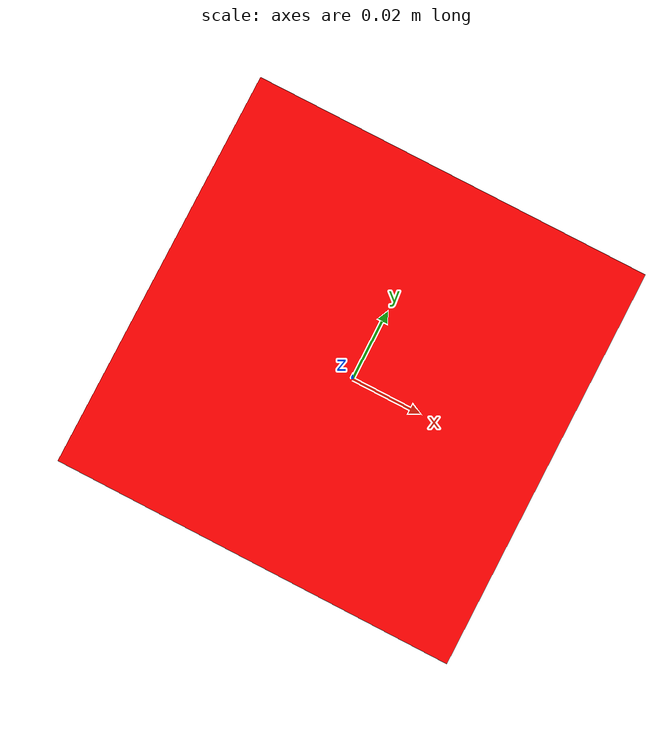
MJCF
<mujoco model="box">
  <worldbody>
    <body name="collision">
      <geom pos="0 0 0" size="0.05 0.05 0.05" type="box" rgba="1 0 0 1"/>
    </body>
    <body name="visual">
      <geom pos="0 0 0" size="0.05 0.05 0.05" type="box" rgba="1 0 0 1" conaffinity="0" contype="0" mass="0.0001" group="1"/>
      <geom pos="0 0 0" size="0.05 0.05 0.05" type="box" rgba="1 0 0 1" conaffinity="0" contype="0" mass="0.0001" group="0"/>
    </body>
    <site rgba="0 0 0 0" size="0.005" pos="0 0 -0.05" name="bottom_site"/>
    <site rgba="0 0 0 0" size="0.005" pos="0 0 0.05" name="top_site"/>
    <site rgba="0 0 0 0" size="0.005" pos="0.071 0 0" name="horizontal_radius_site"/>
  </worldbody>
</mujoco>
